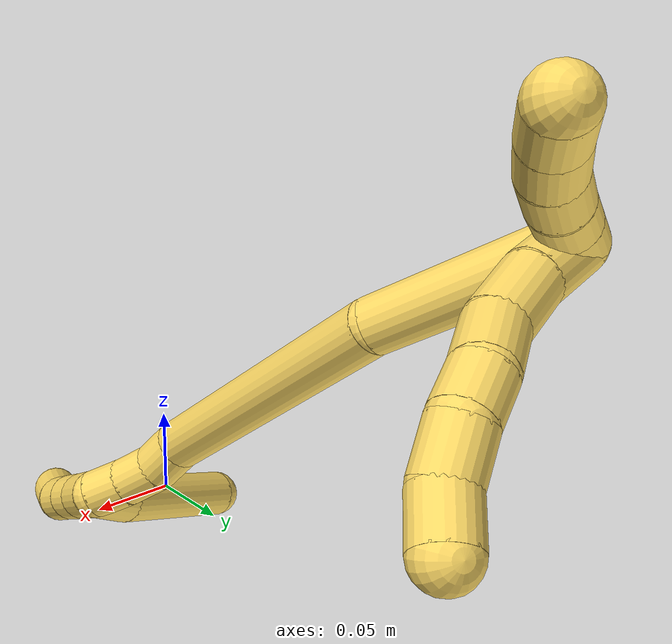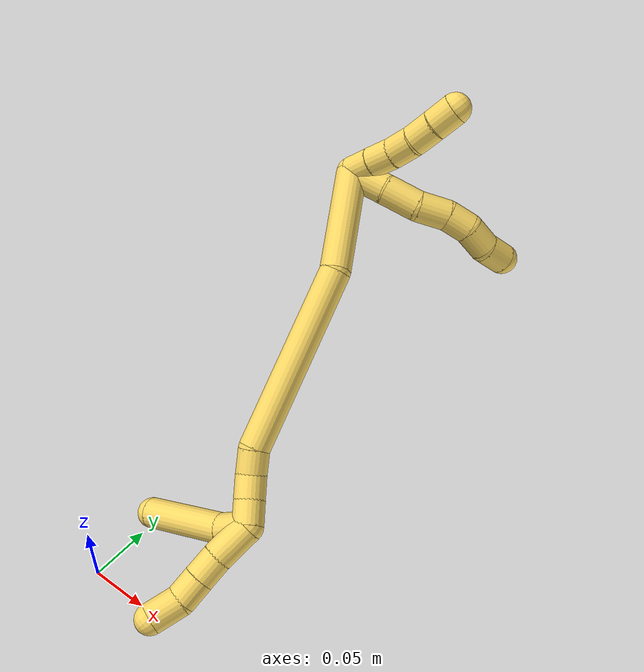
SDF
<sdf version="1.7">
 <world name="default">
  <model name="5">
   <static>0</static>
   <link name="5">
    <collision name="collision-cylinder-e_1_2_8">
     <pose>-0.012695 -0.007335 0.005694 0.910657 -0.939269 -0.487128</pose>
     <geometry><cylinder><radius>0.0125</radius><length>0.031457</length></cylinder></geometry>
     <surface>
      <friction><ode><mu>1.16</mu><mu2>1.16</mu2><slip1>0</slip1><slip2>0</slip2></ode></friction>
      <contact><ode><kp>1e+06</kp><kd>1</kd><max_vel>0</max_vel><min_depth>0.001</min_depth></ode></contact>
     </surface>
    </collision>
    <visual name="visual-cylinder-e_1_2_8">
     <pose>-0.012695 -0.007335 0.005694 0.910657 -0.939269 -0.487128</pose>
     <geometry><cylinder><radius>0.0125</radius><length>0.031457</length></cylinder></geometry>
     <material><ambient>1 0.858824 0.4 1</ambient></material>
    </visual>
    <collision name="collision-cylinder-e_2_8_9">
     <pose>-0.035751 -0.023132 0.017072 0.979386 -0.793565 -0.439444</pose>
     <geometry><cylinder><radius>0.0125</radius><length>0.029072</length></cylinder></geometry>
     <surface>
      <friction><ode><mu>1.16</mu><mu2>1.16</mu2><slip1>0</slip1><slip2>0</slip2></ode></friction>
      <contact><ode><kp>1e+06</kp><kd>1</kd><max_vel>0</max_vel><min_depth>0.001</min_depth></ode></contact>
     </surface>
    </collision>
    <visual name="visual-cylinder-e_2_8_9">
     <pose>-0.035751 -0.023132 0.017072 0.979386 -0.793565 -0.439444</pose>
     <geometry><cylinder><radius>0.0125</radius><length>0.029072</length></cylinder></geometry>
     <material><ambient>1 0.858824 0.4 1</ambient></material>
    </visual>
    <collision name="collision-cylinder-e_3_9_10">
     <pose>-0.052627 -0.039536 0.030174 0.81944 -0.539973 -0.239231</pose>
     <geometry><cylinder><radius>0.0125</radius><length>0.02534</length></cylinder></geometry>
     <surface>
      <friction><ode><mu>1.16</mu><mu2>1.16</mu2><slip1>0</slip1><slip2>0</slip2></ode></friction>
      <contact><ode><kp>1e+06</kp><kd>1</kd><max_vel>0</max_vel><min_depth>0.001</min_depth></ode></contact>
     </surface>
    </collision>
    <visual name="visual-cylinder-e_3_9_10">
     <pose>-0.052627 -0.039536 0.030174 0.81944 -0.539973 -0.239231</pose>
     <geometry><cylinder><radius>0.0125</radius><length>0.02534</length></cylinder></geometry>
     <material><ambient>1 0.858824 0.4 1</ambient></material>
    </visual>
    <collision name="collision-cylinder-e_4_10_11">
     <pose>-0.065031 -0.05499 0.041415 1.10008 -0.609868 -0.381298</pose>
     <geometry><cylinder><radius>0.0125</radius><length>0.020566</length></cylinder></geometry>
     <surface>
      <friction><ode><mu>1.16</mu><mu2>1.16</mu2><slip1>0</slip1><slip2>0</slip2></ode></friction>
      <contact><ode><kp>1e+06</kp><kd>1</kd><max_vel>0</max_vel><min_depth>0.001</min_depth></ode></contact>
     </surface>
    </collision>
    <visual name="visual-cylinder-e_4_10_11">
     <pose>-0.065031 -0.05499 0.041415 1.10008 -0.609868 -0.381298</pose>
     <geometry><cylinder><radius>0.0125</radius><length>0.020566</length></cylinder></geometry>
     <material><ambient>1 0.858824 0.4 1</ambient></material>
    </visual>
    <collision name="collision-cylinder-e_5_11_12">
     <pose>-0.075237 -0.072496 0.046783 1.41741 -0.403464 -0.347124</pose>
     <geometry><cylinder><radius>0.0125</radius><length>0.02199</length></cylinder></geometry>
     <surface>
      <friction><ode><mu>1.16</mu><mu2>1.16</mu2><slip1>0</slip1><slip2>0</slip2></ode></friction>
      <contact><ode><kp>1e+06</kp><kd>1</kd><max_vel>0</max_vel><min_depth>0.001</min_depth></ode></contact>
     </surface>
    </collision>
    <visual name="visual-cylinder-e_5_11_12">
     <pose>-0.075237 -0.072496 0.046783 1.41741 -0.403464 -0.347124</pose>
     <geometry><cylinder><radius>0.0125</radius><length>0.02199</length></cylinder></geometry>
     <material><ambient>1 0.858824 0.4 1</ambient></material>
    </visual>
    <collision name="collision-cylinder-e_6_12_6">
     <pose>-0.081808 -0.092097 0.052687 1.14482 -0.210484 -0.135923</pose>
     <geometry><cylinder><radius>0.0125</radius><length>0.021576</length></cylinder></geometry>
     <surface>
      <friction><ode><mu>1.16</mu><mu2>1.16</mu2><slip1>0</slip1><slip2>0</slip2></ode></friction>
      <contact><ode><kp>1e+06</kp><kd>1</kd><max_vel>0</max_vel><min_depth>0.001</min_depth></ode></contact>
     </surface>
    </collision>
    <visual name="visual-cylinder-e_6_12_6">
     <pose>-0.081808 -0.092097 0.052687 1.14482 -0.210484 -0.135923</pose>
     <geometry><cylinder><radius>0.0125</radius><length>0.021576</length></cylinder></geometry>
     <material><ambient>1 0.858824 0.4 1</ambient></material>
    </visual>
    <collision name="collision-cylinder-e_1_2_13">
     <pose>-0.006149 0.002423 0.007505 -0.312312 -0.662229 0.108139</pose>
     <geometry><cylinder><radius>0.0125</radius><length>0.02</length></cylinder></geometry>
     <surface>
      <friction><ode><mu>1.16</mu><mu2>1.16</mu2><slip1>0</slip1><slip2>0</slip2></ode></friction>
      <contact><ode><kp>1e+06</kp><kd>1</kd><max_vel>0</max_vel><min_depth>0.001</min_depth></ode></contact>
     </surface>
    </collision>
    <visual name="visual-cylinder-e_1_2_13">
     <pose>-0.006149 0.002423 0.007505 -0.312312 -0.662229 0.108139</pose>
     <geometry><cylinder><radius>0.0125</radius><length>0.02</length></cylinder></geometry>
     <material><ambient>1 0.858824 0.4 1</ambient></material>
    </visual>
    <collision name="collision-cylinder-e_2_13_14">
     <pose>-0.018434 0.006966 0.022615 -0.271842 -0.6607 0.093729</pose>
     <geometry><cylinder><radius>0.0125</radius><length>0.02</length></cylinder></geometry>
     <surface>
      <friction><ode><mu>1.16</mu><mu2>1.16</mu2><slip1>0</slip1><slip2>0</slip2></ode></friction>
      <contact><ode><kp>1e+06</kp><kd>1</kd><max_vel>0</max_vel><min_depth>0.001</min_depth></ode></contact>
     </surface>
    </collision>
    <visual name="visual-cylinder-e_2_13_14">
     <pose>-0.018434 0.006966 0.022615 -0.271842 -0.6607 0.093729</pose>
     <geometry><cylinder><radius>0.0125</radius><length>0.02</length></cylinder></geometry>
     <material><ambient>1 0.858824 0.4 1</ambient></material>
    </visual>
    <collision name="collision-cylinder-e_3_14_15">
     <pose>-0.030354 0.012285 0.037726 -0.402941 -0.616659 0.129913</pose>
     <geometry><cylinder><radius>0.0125</radius><length>0.02</length></cylinder></geometry>
     <surface>
      <friction><ode><mu>1.16</mu><mu2>1.16</mu2><slip1>0</slip1><slip2>0</slip2></ode></friction>
      <contact><ode><kp>1e+06</kp><kd>1</kd><max_vel>0</max_vel><min_depth>0.001</min_depth></ode></contact>
     </surface>
    </collision>
    <visual name="visual-cylinder-e_3_14_15">
     <pose>-0.030354 0.012285 0.037726 -0.402941 -0.616659 0.129913</pose>
     <geometry><cylinder><radius>0.0125</radius><length>0.02</length></cylinder></geometry>
     <material><ambient>1 0.858824 0.4 1</ambient></material>
    </visual>
    <collision name="collision-cylinder-e_4_15_16">
     <pose>-0.040483 0.018805 0.053602 -0.377623 -0.44958 0.087331</pose>
     <geometry><cylinder><radius>0.0125</radius><length>0.02</length></cylinder></geometry>
     <surface>
      <friction><ode><mu>1.16</mu><mu2>1.16</mu2><slip1>0</slip1><slip2>0</slip2></ode></friction>
      <contact><ode><kp>1e+06</kp><kd>1</kd><max_vel>0</max_vel><min_depth>0.001</min_depth></ode></contact>
     </surface>
    </collision>
    <visual name="visual-cylinder-e_4_15_16">
     <pose>-0.040483 0.018805 0.053602 -0.377623 -0.44958 0.087331</pose>
     <geometry><cylinder><radius>0.0125</radius><length>0.02</length></cylinder></geometry>
     <material><ambient>1 0.858824 0.4 1</ambient></material>
    </visual>
    <collision name="collision-cylinder-e_5_16_5">
     <pose>-0.048604 0.025175 0.070717 -0.335604 -0.387122 0.066384</pose>
     <geometry><cylinder><radius>0.0125</radius><length>0.02</length></cylinder></geometry>
     <surface>
      <friction><ode><mu>1.16</mu><mu2>1.16</mu2><slip1>0</slip1><slip2>0</slip2></ode></friction>
      <contact><ode><kp>1e+06</kp><kd>1</kd><max_vel>0</max_vel><min_depth>0.001</min_depth></ode></contact>
     </surface>
    </collision>
    <visual name="visual-cylinder-e_5_16_5">
     <pose>-0.048604 0.025175 0.070717 -0.335604 -0.387122 0.066384</pose>
     <geometry><cylinder><radius>0.0125</radius><length>0.02</length></cylinder></geometry>
     <material><ambient>1 0.858824 0.4 1</ambient></material>
    </visual>
    <collision name="collision-cylinder-e_1_2_17">
     <pose>-0.027361 -0.012085 -0.031979 2.78028 -0.674952 -2.18174</pose>
     <geometry><cylinder><radius>0.0125</radius><length>0.087575</length></cylinder></geometry>
     <surface>
      <friction><ode><mu>1.16</mu><mu2>1.16</mu2><slip1>0</slip1><slip2>0</slip2></ode></friction>
      <contact><ode><kp>1e+06</kp><kd>1</kd><max_vel>0</max_vel><min_depth>0.001</min_depth></ode></contact>
     </surface>
    </collision>
    <visual name="visual-cylinder-e_1_2_17">
     <pose>-0.027361 -0.012085 -0.031979 2.78028 -0.674952 -2.18174</pose>
     <geometry><cylinder><radius>0.0125</radius><length>0.087575</length></cylinder></geometry>
     <material><ambient>1 0.858824 0.4 1</ambient></material>
    </visual>
    <collision name="collision-cylinder-e_2_17_18">
     <pose>-0.079907 -0.047707 -0.131617 2.80681 -0.338075 -1.58077</pose>
     <geometry><cylinder><radius>0.0125</radius><length>0.151866</length></cylinder></geometry>
     <surface>
      <friction><ode><mu>1.16</mu><mu2>1.16</mu2><slip1>0</slip1><slip2>0</slip2></ode></friction>
      <contact><ode><kp>1e+06</kp><kd>1</kd><max_vel>0</max_vel><min_depth>0.001</min_depth></ode></contact>
     </surface>
    </collision>
    <visual name="visual-cylinder-e_2_17_18">
     <pose>-0.079907 -0.047707 -0.131617 2.80681 -0.338075 -1.58077</pose>
     <geometry><cylinder><radius>0.0125</radius><length>0.151866</length></cylinder></geometry>
     <material><ambient>1 0.858824 0.4 1</ambient></material>
    </visual>
    <collision name="collision-cylinder-e_3_18_19">
     <pose>-0.109739 -0.076839 -0.20647 2.48067 -0.471468 -1.22173</pose>
     <geometry><cylinder><radius>0.0125</radius><length>0.020464</length></cylinder></geometry>
     <surface>
      <friction><ode><mu>1.16</mu><mu2>1.16</mu2><slip1>0</slip1><slip2>0</slip2></ode></friction>
      <contact><ode><kp>1e+06</kp><kd>1</kd><max_vel>0</max_vel><min_depth>0.001</min_depth></ode></contact>
     </surface>
    </collision>
    <visual name="visual-cylinder-e_3_18_19">
     <pose>-0.109739 -0.076839 -0.20647 2.48067 -0.471468 -1.22173</pose>
     <geometry><cylinder><radius>0.0125</radius><length>0.020464</length></cylinder></geometry>
     <material><ambient>1 0.858824 0.4 1</ambient></material>
    </visual>
    <collision name="collision-cylinder-e_4_19_20">
     <pose>-0.120916 -0.086158 -0.220268 2.62804 -0.711137 -1.91068</pose>
     <geometry><cylinder><radius>0.0125</radius><length>0.020009</length></cylinder></geometry>
     <surface>
      <friction><ode><mu>1.16</mu><mu2>1.16</mu2><slip1>0</slip1><slip2>0</slip2></ode></friction>
      <contact><ode><kp>1e+06</kp><kd>1</kd><max_vel>0</max_vel><min_depth>0.001</min_depth></ode></contact>
     </surface>
    </collision>
    <visual name="visual-cylinder-e_4_19_20">
     <pose>-0.120916 -0.086158 -0.220268 2.62804 -0.711137 -1.91068</pose>
     <geometry><cylinder><radius>0.0125</radius><length>0.020009</length></cylinder></geometry>
     <material><ambient>1 0.858824 0.4 1</ambient></material>
    </visual>
    <collision name="collision-cylinder-e_5_20_1">
     <pose>-0.13449 -0.092973 -0.233328 2.69522 -0.777235 -2.12926</pose>
     <geometry><cylinder><radius>0.0125</radius><length>0.020086</length></cylinder></geometry>
     <surface>
      <friction><ode><mu>1.16</mu><mu2>1.16</mu2><slip1>0</slip1><slip2>0</slip2></ode></friction>
      <contact><ode><kp>1e+06</kp><kd>1</kd><max_vel>0</max_vel><min_depth>0.001</min_depth></ode></contact>
     </surface>
    </collision>
    <visual name="visual-cylinder-e_5_20_1">
     <pose>-0.13449 -0.092973 -0.233328 2.69522 -0.777235 -2.12926</pose>
     <geometry><cylinder><radius>0.0125</radius><length>0.020086</length></cylinder></geometry>
     <material><ambient>1 0.858824 0.4 1</ambient></material>
    </visual>
    <collision name="collision-cylinder-e_1_1_21">
     <pose>-0.142575 -0.097374 -0.255823 3.06002 -0.064706 -1.34103</pose>
     <geometry><cylinder><radius>0.0125</radius><length>0.03225</length></cylinder></geometry>
     <surface>
      <friction><ode><mu>1.16</mu><mu2>1.16</mu2><slip1>0</slip1><slip2>0</slip2></ode></friction>
      <contact><ode><kp>1e+06</kp><kd>1</kd><max_vel>0</max_vel><min_depth>0.001</min_depth></ode></contact>
     </surface>
    </collision>
    <visual name="visual-cylinder-e_1_1_21">
     <pose>-0.142575 -0.097374 -0.255823 3.06002 -0.064706 -1.34103</pose>
     <geometry><cylinder><radius>0.0125</radius><length>0.03225</length></cylinder></geometry>
     <material><ambient>1 0.858824 0.4 1</ambient></material>
    </visual>
    <collision name="collision-cylinder-e_2_21_22">
     <pose>-0.145444 -0.099459 -0.282139 3.06645 -0.175354 -2.33339</pose>
     <geometry><cylinder><radius>0.0125</radius><length>0.020934</length></cylinder></geometry>
     <surface>
      <friction><ode><mu>1.16</mu><mu2>1.16</mu2><slip1>0</slip1><slip2>0</slip2></ode></friction>
      <contact><ode><kp>1e+06</kp><kd>1</kd><max_vel>0</max_vel><min_depth>0.001</min_depth></ode></contact>
     </surface>
    </collision>
    <visual name="visual-cylinder-e_2_21_22">
     <pose>-0.145444 -0.099459 -0.282139 3.06645 -0.175354 -2.33339</pose>
     <geometry><cylinder><radius>0.0125</radius><length>0.020934</length></cylinder></geometry>
     <material><ambient>1 0.858824 0.4 1</ambient></material>
    </visual>
    <collision name="collision-cylinder-e_3_22_23">
     <pose>-0.149117 -0.101185 -0.302778 3.04993 -0.175665 -2.18127</pose>
     <geometry><cylinder><radius>0.0125</radius><length>0.021136</length></cylinder></geometry>
     <surface>
      <friction><ode><mu>1.16</mu><mu2>1.16</mu2><slip1>0</slip1><slip2>0</slip2></ode></friction>
      <contact><ode><kp>1e+06</kp><kd>1</kd><max_vel>0</max_vel><min_depth>0.001</min_depth></ode></contact>
     </surface>
    </collision>
    <visual name="visual-cylinder-e_3_22_23">
     <pose>-0.149117 -0.101185 -0.302778 3.04993 -0.175665 -2.18127</pose>
     <geometry><cylinder><radius>0.0125</radius><length>0.021136</length></cylinder></geometry>
     <material><ambient>1 0.858824 0.4 1</ambient></material>
    </visual>
    <collision name="collision-cylinder-e_4_23_4">
     <pose>-0.15069 -0.099872 -0.325775 -2.96414 0.021367 -0.239061</pose>
     <geometry><cylinder><radius>0.0125</radius><length>0.025679</length></cylinder></geometry>
     <surface>
      <friction><ode><mu>1.16</mu><mu2>1.16</mu2><slip1>0</slip1><slip2>0</slip2></ode></friction>
      <contact><ode><kp>1e+06</kp><kd>1</kd><max_vel>0</max_vel><min_depth>0.001</min_depth></ode></contact>
     </surface>
    </collision>
    <visual name="visual-cylinder-e_4_23_4">
     <pose>-0.15069 -0.099872 -0.325775 -2.96414 0.021367 -0.239061</pose>
     <geometry><cylinder><radius>0.0125</radius><length>0.025679</length></cylinder></geometry>
     <material><ambient>1 0.858824 0.4 1</ambient></material>
    </visual>
    <collision name="collision-cylinder-e_1_1_24">
     <pose>-0.132463 -0.098457 -0.248577 2.87574 0.783111 2.51519</pose>
     <geometry><cylinder><radius>0.0125</radius><length>0.025711</length></cylinder></geometry>
     <surface>
      <friction><ode><mu>1.16</mu><mu2>1.16</mu2><slip1>0</slip1><slip2>0</slip2></ode></friction>
      <contact><ode><kp>1e+06</kp><kd>1</kd><max_vel>0</max_vel><min_depth>0.001</min_depth></ode></contact>
     </surface>
    </collision>
    <visual name="visual-cylinder-e_1_1_24">
     <pose>-0.132463 -0.098457 -0.248577 2.87574 0.783111 2.51519</pose>
     <geometry><cylinder><radius>0.0125</radius><length>0.025711</length></cylinder></geometry>
     <material><ambient>1 0.858824 0.4 1</ambient></material>
    </visual>
    <collision name="collision-cylinder-e_2_24_3">
     <pose>-0.092585 -0.101967 -0.278087 3.08777 0.978086 3.04051</pose>
     <geometry><cylinder><radius>0.0125</radius><length>0.074289</length></cylinder></geometry>
     <surface>
      <friction><ode><mu>1.16</mu><mu2>1.16</mu2><slip1>0</slip1><slip2>0</slip2></ode></friction>
      <contact><ode><kp>1e+06</kp><kd>1</kd><max_vel>0</max_vel><min_depth>0.001</min_depth></ode></contact>
     </surface>
    </collision>
    <visual name="visual-cylinder-e_2_24_3">
     <pose>-0.092585 -0.101967 -0.278087 3.08777 0.978086 3.04051</pose>
     <geometry><cylinder><radius>0.0125</radius><length>0.074289</length></cylinder></geometry>
     <material><ambient>1 0.858824 0.4 1</ambient></material>
    </visual>
    <collision name="collision-sphere-3">
     <pose>-0.061776 -0.103083 -0.298806 0 -0 0</pose>
     <geometry><sphere><radius>0.0125</radius></sphere></geometry>
     <surface>
      <friction><ode><mu>1.16</mu><mu2>1.16</mu2><slip1>0</slip1><slip2>0</slip2></ode></friction>
      <contact><ode><kp>1e+06</kp><kd>1</kd><max_vel>0</max_vel><min_depth>0.001</min_depth></ode></contact>
     </surface>
    </collision>
    <visual name="visual-sphere-3">
     <pose>-0.061776 -0.103083 -0.298806 0 -0 0</pose>
     <geometry><sphere><radius>0.0125</radius></sphere></geometry>
     <material><ambient>1 0.858824 0.4 1</ambient></material>
    </visual>
    <collision name="collision-sphere-24">
     <pose>-0.123394 -0.100851 -0.257367 0 -0 0</pose>
     <geometry><sphere><radius>0.0125</radius></sphere></geometry>
     <surface>
      <friction><ode><mu>1.16</mu><mu2>1.16</mu2><slip1>0</slip1><slip2>0</slip2></ode></friction>
      <contact><ode><kp>1e+06</kp><kd>1</kd><max_vel>0</max_vel><min_depth>0.001</min_depth></ode></contact>
     </surface>
    </collision>
    <visual name="visual-sphere-24">
     <pose>-0.123394 -0.100851 -0.257367 0 -0 0</pose>
     <geometry><sphere><radius>0.0125</radius></sphere></geometry>
     <material><ambient>1 0.858824 0.4 1</ambient></material>
    </visual>
    <collision name="collision-sphere-4">
     <pose>-0.150415 -0.097606 -0.33841 0 -0 0</pose>
     <geometry><sphere><radius>0.0125</radius></sphere></geometry>
     <surface>
      <friction><ode><mu>1.16</mu><mu2>1.16</mu2><slip1>0</slip1><slip2>0</slip2></ode></friction>
      <contact><ode><kp>1e+06</kp><kd>1</kd><max_vel>0</max_vel><min_depth>0.001</min_depth></ode></contact>
     </surface>
    </collision>
    <visual name="visual-sphere-4">
     <pose>-0.150415 -0.097606 -0.33841 0 -0 0</pose>
     <geometry><sphere><radius>0.0125</radius></sphere></geometry>
     <material><ambient>1 0.858824 0.4 1</ambient></material>
    </visual>
    <collision name="collision-sphere-23">
     <pose>-0.150964 -0.102138 -0.31314 0 -0 0</pose>
     <geometry><sphere><radius>0.0125</radius></sphere></geometry>
     <surface>
      <friction><ode><mu>1.16</mu><mu2>1.16</mu2><slip1>0</slip1><slip2>0</slip2></ode></friction>
      <contact><ode><kp>1e+06</kp><kd>1</kd><max_vel>0</max_vel><min_depth>0.001</min_depth></ode></contact>
     </surface>
    </collision>
    <visual name="visual-sphere-23">
     <pose>-0.150964 -0.102138 -0.31314 0 -0 0</pose>
     <geometry><sphere><radius>0.0125</radius></sphere></geometry>
     <material><ambient>1 0.858824 0.4 1</ambient></material>
    </visual>
    <collision name="collision-sphere-22">
     <pose>-0.14727 -0.100233 -0.292416 0 -0 0</pose>
     <geometry><sphere><radius>0.0125</radius></sphere></geometry>
     <surface>
      <friction><ode><mu>1.16</mu><mu2>1.16</mu2><slip1>0</slip1><slip2>0</slip2></ode></friction>
      <contact><ode><kp>1e+06</kp><kd>1</kd><max_vel>0</max_vel><min_depth>0.001</min_depth></ode></contact>
     </surface>
    </collision>
    <visual name="visual-sphere-22">
     <pose>-0.14727 -0.100233 -0.292416 0 -0 0</pose>
     <geometry><sphere><radius>0.0125</radius></sphere></geometry>
     <material><ambient>1 0.858824 0.4 1</ambient></material>
    </visual>
    <collision name="collision-sphere-21">
     <pose>-0.143618 -0.098685 -0.271861 0 -0 0</pose>
     <geometry><sphere><radius>0.0125</radius></sphere></geometry>
     <surface>
      <friction><ode><mu>1.16</mu><mu2>1.16</mu2><slip1>0</slip1><slip2>0</slip2></ode></friction>
      <contact><ode><kp>1e+06</kp><kd>1</kd><max_vel>0</max_vel><min_depth>0.001</min_depth></ode></contact>
     </surface>
    </collision>
    <visual name="visual-sphere-21">
     <pose>-0.143618 -0.098685 -0.271861 0 -0 0</pose>
     <geometry><sphere><radius>0.0125</radius></sphere></geometry>
     <material><ambient>1 0.858824 0.4 1</ambient></material>
    </visual>
    <collision name="collision-sphere-1">
     <pose>-0.141533 -0.096063 -0.239786 0 -0 0</pose>
     <geometry><sphere><radius>0.0125</radius></sphere></geometry>
     <surface>
      <friction><ode><mu>1.16</mu><mu2>1.16</mu2><slip1>0</slip1><slip2>0</slip2></ode></friction>
      <contact><ode><kp>1e+06</kp><kd>1</kd><max_vel>0</max_vel><min_depth>0.001</min_depth></ode></contact>
     </surface>
    </collision>
    <visual name="visual-sphere-1">
     <pose>-0.141533 -0.096063 -0.239786 0 -0 0</pose>
     <geometry><sphere><radius>0.0125</radius></sphere></geometry>
     <material><ambient>1 0.858824 0.4 1</ambient></material>
    </visual>
    <collision name="collision-sphere-12">
     <pose>-0.079554 -0.082489 0.048328 0 -0 0</pose>
     <geometry><sphere><radius>0.0125</radius></sphere></geometry>
     <surface>
      <friction><ode><mu>1.16</mu><mu2>1.16</mu2><slip1>0</slip1><slip2>0</slip2></ode></friction>
      <contact><ode><kp>1e+06</kp><kd>1</kd><max_vel>0</max_vel><min_depth>0.001</min_depth></ode></contact>
     </surface>
    </collision>
    <visual name="visual-sphere-12">
     <pose>-0.079554 -0.082489 0.048328 0 -0 0</pose>
     <geometry><sphere><radius>0.0125</radius></sphere></geometry>
     <material><ambient>1 0.858824 0.4 1</ambient></material>
    </visual>
    <collision name="collision-sphere-11">
     <pose>-0.07092 -0.062503 0.045238 0 -0 0</pose>
     <geometry><sphere><radius>0.0125</radius></sphere></geometry>
     <surface>
      <friction><ode><mu>1.16</mu><mu2>1.16</mu2><slip1>0</slip1><slip2>0</slip2></ode></friction>
      <contact><ode><kp>1e+06</kp><kd>1</kd><max_vel>0</max_vel><min_depth>0.001</min_depth></ode></contact>
     </surface>
    </collision>
    <visual name="visual-sphere-11">
     <pose>-0.07092 -0.062503 0.045238 0 -0 0</pose>
     <geometry><sphere><radius>0.0125</radius></sphere></geometry>
     <material><ambient>1 0.858824 0.4 1</ambient></material>
    </visual>
    <collision name="collision-sphere-10">
     <pose>-0.059141 -0.047478 0.037592 0 -0 0</pose>
     <geometry><sphere><radius>0.0125</radius></sphere></geometry>
     <surface>
      <friction><ode><mu>1.16</mu><mu2>1.16</mu2><slip1>0</slip1><slip2>0</slip2></ode></friction>
      <contact><ode><kp>1e+06</kp><kd>1</kd><max_vel>0</max_vel><min_depth>0.001</min_depth></ode></contact>
     </surface>
    </collision>
    <visual name="visual-sphere-10">
     <pose>-0.059141 -0.047478 0.037592 0 -0 0</pose>
     <geometry><sphere><radius>0.0125</radius></sphere></geometry>
     <material><ambient>1 0.858824 0.4 1</ambient></material>
    </visual>
    <collision name="collision-sphere-9">
     <pose>-0.046113 -0.031595 0.022755 0 -0 0</pose>
     <geometry><sphere><radius>0.0125</radius></sphere></geometry>
     <surface>
      <friction><ode><mu>1.16</mu><mu2>1.16</mu2><slip1>0</slip1><slip2>0</slip2></ode></friction>
      <contact><ode><kp>1e+06</kp><kd>1</kd><max_vel>0</max_vel><min_depth>0.001</min_depth></ode></contact>
     </surface>
    </collision>
    <visual name="visual-sphere-9">
     <pose>-0.046113 -0.031595 0.022755 0 -0 0</pose>
     <geometry><sphere><radius>0.0125</radius></sphere></geometry>
     <material><ambient>1 0.858824 0.4 1</ambient></material>
    </visual>
    <collision name="collision-sphere-2">
     <geometry><sphere><radius>0.0125</radius></sphere></geometry>
     <surface>
      <friction><ode><mu>1.16</mu><mu2>1.16</mu2><slip1>0</slip1><slip2>0</slip2></ode></friction>
      <contact><ode><kp>1e+06</kp><kd>1</kd><max_vel>0</max_vel><min_depth>0.001</min_depth></ode></contact>
     </surface>
    </collision>
    <visual name="visual-sphere-2">
     <geometry><sphere><radius>0.0125</radius></sphere></geometry>
     <material><ambient>1 0.858824 0.4 1</ambient></material>
    </visual>
    <collision name="collision-sphere-19">
     <pose>-0.114386 -0.082435 -0.213666 0 -0 0</pose>
     <geometry><sphere><radius>0.0125</radius></sphere></geometry>
     <surface>
      <friction><ode><mu>1.16</mu><mu2>1.16</mu2><slip1>0</slip1><slip2>0</slip2></ode></friction>
      <contact><ode><kp>1e+06</kp><kd>1</kd><max_vel>0</max_vel><min_depth>0.001</min_depth></ode></contact>
     </surface>
    </collision>
    <visual name="visual-sphere-19">
     <pose>-0.114386 -0.082435 -0.213666 0 -0 0</pose>
     <geometry><sphere><radius>0.0125</radius></sphere></geometry>
     <material><ambient>1 0.858824 0.4 1</ambient></material>
    </visual>
    <collision name="collision-sphere-8">
     <pose>-0.02539 -0.01467 0.011388 0 -0 0</pose>
     <geometry><sphere><radius>0.0125</radius></sphere></geometry>
     <surface>
      <friction><ode><mu>1.16</mu><mu2>1.16</mu2><slip1>0</slip1><slip2>0</slip2></ode></friction>
      <contact><ode><kp>1e+06</kp><kd>1</kd><max_vel>0</max_vel><min_depth>0.001</min_depth></ode></contact>
     </surface>
    </collision>
    <visual name="visual-sphere-8">
     <pose>-0.02539 -0.01467 0.011388 0 -0 0</pose>
     <geometry><sphere><radius>0.0125</radius></sphere></geometry>
     <material><ambient>1 0.858824 0.4 1</ambient></material>
    </visual>
    <collision name="collision-sphere-6">
     <pose>-0.084062 -0.101704 0.057047 0 -0 0</pose>
     <geometry><sphere><radius>0.0125</radius></sphere></geometry>
     <surface>
      <friction><ode><mu>1.16</mu><mu2>1.16</mu2><slip1>0</slip1><slip2>0</slip2></ode></friction>
      <contact><ode><kp>1e+06</kp><kd>1</kd><max_vel>0</max_vel><min_depth>0.001</min_depth></ode></contact>
     </surface>
    </collision>
    <visual name="visual-sphere-6">
     <pose>-0.084062 -0.101704 0.057047 0 -0 0</pose>
     <geometry><sphere><radius>0.0125</radius></sphere></geometry>
     <material><ambient>1 0.858824 0.4 1</ambient></material>
    </visual>
    <collision name="collision-sphere-13">
     <pose>-0.012298 0.004846 0.015009 0 -0 0</pose>
     <geometry><sphere><radius>0.0125</radius></sphere></geometry>
     <surface>
      <friction><ode><mu>1.16</mu><mu2>1.16</mu2><slip1>0</slip1><slip2>0</slip2></ode></friction>
      <contact><ode><kp>1e+06</kp><kd>1</kd><max_vel>0</max_vel><min_depth>0.001</min_depth></ode></contact>
     </surface>
    </collision>
    <visual name="visual-sphere-13">
     <pose>-0.012298 0.004846 0.015009 0 -0 0</pose>
     <geometry><sphere><radius>0.0125</radius></sphere></geometry>
     <material><ambient>1 0.858824 0.4 1</ambient></material>
    </visual>
    <collision name="collision-sphere-14">
     <pose>-0.024571 0.009086 0.030221 0 -0 0</pose>
     <geometry><sphere><radius>0.0125</radius></sphere></geometry>
     <surface>
      <friction><ode><mu>1.16</mu><mu2>1.16</mu2><slip1>0</slip1><slip2>0</slip2></ode></friction>
      <contact><ode><kp>1e+06</kp><kd>1</kd><max_vel>0</max_vel><min_depth>0.001</min_depth></ode></contact>
     </surface>
    </collision>
    <visual name="visual-sphere-14">
     <pose>-0.024571 0.009086 0.030221 0 -0 0</pose>
     <geometry><sphere><radius>0.0125</radius></sphere></geometry>
     <material><ambient>1 0.858824 0.4 1</ambient></material>
    </visual>
    <collision name="collision-sphere-15">
     <pose>-0.036137 0.015484 0.04523 0 -0 0</pose>
     <geometry><sphere><radius>0.0125</radius></sphere></geometry>
     <surface>
      <friction><ode><mu>1.16</mu><mu2>1.16</mu2><slip1>0</slip1><slip2>0</slip2></ode></friction>
      <contact><ode><kp>1e+06</kp><kd>1</kd><max_vel>0</max_vel><min_depth>0.001</min_depth></ode></contact>
     </surface>
    </collision>
    <visual name="visual-sphere-15">
     <pose>-0.036137 0.015484 0.04523 0 -0 0</pose>
     <geometry><sphere><radius>0.0125</radius></sphere></geometry>
     <material><ambient>1 0.858824 0.4 1</ambient></material>
    </visual>
    <collision name="collision-sphere-16">
     <pose>-0.044829 0.022126 0.061974 0 -0 0</pose>
     <geometry><sphere><radius>0.0125</radius></sphere></geometry>
     <surface>
      <friction><ode><mu>1.16</mu><mu2>1.16</mu2><slip1>0</slip1><slip2>0</slip2></ode></friction>
      <contact><ode><kp>1e+06</kp><kd>1</kd><max_vel>0</max_vel><min_depth>0.001</min_depth></ode></contact>
     </surface>
    </collision>
    <visual name="visual-sphere-16">
     <pose>-0.044829 0.022126 0.061974 0 -0 0</pose>
     <geometry><sphere><radius>0.0125</radius></sphere></geometry>
     <material><ambient>1 0.858824 0.4 1</ambient></material>
    </visual>
    <collision name="collision-sphere-5">
     <pose>-0.052379 0.028225 0.079461 0 -0 0</pose>
     <geometry><sphere><radius>0.0125</radius></sphere></geometry>
     <surface>
      <friction><ode><mu>1.16</mu><mu2>1.16</mu2><slip1>0</slip1><slip2>0</slip2></ode></friction>
      <contact><ode><kp>1e+06</kp><kd>1</kd><max_vel>0</max_vel><min_depth>0.001</min_depth></ode></contact>
     </surface>
    </collision>
    <visual name="visual-sphere-5">
     <pose>-0.052379 0.028225 0.079461 0 -0 0</pose>
     <geometry><sphere><radius>0.0125</radius></sphere></geometry>
     <material><ambient>1 0.858824 0.4 1</ambient></material>
    </visual>
    <collision name="collision-sphere-17">
     <pose>-0.054722 -0.02417 -0.063959 0 -0 0</pose>
     <geometry><sphere><radius>0.0125</radius></sphere></geometry>
     <surface>
      <friction><ode><mu>1.16</mu><mu2>1.16</mu2><slip1>0</slip1><slip2>0</slip2></ode></friction>
      <contact><ode><kp>1e+06</kp><kd>1</kd><max_vel>0</max_vel><min_depth>0.001</min_depth></ode></contact>
     </surface>
    </collision>
    <visual name="visual-sphere-17">
     <pose>-0.054722 -0.02417 -0.063959 0 -0 0</pose>
     <geometry><sphere><radius>0.0125</radius></sphere></geometry>
     <material><ambient>1 0.858824 0.4 1</ambient></material>
    </visual>
    <collision name="collision-sphere-18">
     <pose>-0.105092 -0.071244 -0.199274 0 -0 0</pose>
     <geometry><sphere><radius>0.0125</radius></sphere></geometry>
     <surface>
      <friction><ode><mu>1.16</mu><mu2>1.16</mu2><slip1>0</slip1><slip2>0</slip2></ode></friction>
      <contact><ode><kp>1e+06</kp><kd>1</kd><max_vel>0</max_vel><min_depth>0.001</min_depth></ode></contact>
     </surface>
    </collision>
    <visual name="visual-sphere-18">
     <pose>-0.105092 -0.071244 -0.199274 0 -0 0</pose>
     <geometry><sphere><radius>0.0125</radius></sphere></geometry>
     <material><ambient>1 0.858824 0.4 1</ambient></material>
    </visual>
    <collision name="collision-sphere-20">
     <pose>-0.127446 -0.089882 -0.22687 0 -0 0</pose>
     <geometry><sphere><radius>0.0125</radius></sphere></geometry>
     <surface>
      <friction><ode><mu>1.16</mu><mu2>1.16</mu2><slip1>0</slip1><slip2>0</slip2></ode></friction>
      <contact><ode><kp>1e+06</kp><kd>1</kd><max_vel>0</max_vel><min_depth>0.001</min_depth></ode></contact>
     </surface>
    </collision>
    <visual name="visual-sphere-20">
     <pose>-0.127446 -0.089882 -0.22687 0 -0 0</pose>
     <geometry><sphere><radius>0.0125</radius></sphere></geometry>
     <material><ambient>1 0.858824 0.4 1</ambient></material>
    </visual>
    <inertial>
     <pose>-0.076341 -0.051738 -0.111705 0 -0 0</pose>
     <mass>0.75</mass>
     <inertia>
      <ixx>-0.000379</ixx>
      <ixy>0</ixy>
      <ixz>0</ixz>
      <iyy>-0.000209</iyy>
      <iyz>0</iyz>
      <izz>0.000218</izz>
     </inertia>
    </inertial>
   </link>
   <pose>0.02373 0.30273 0.232705 1.1478 0.082729 2.73568</pose>
  </model>
 </world>
</sdf>
